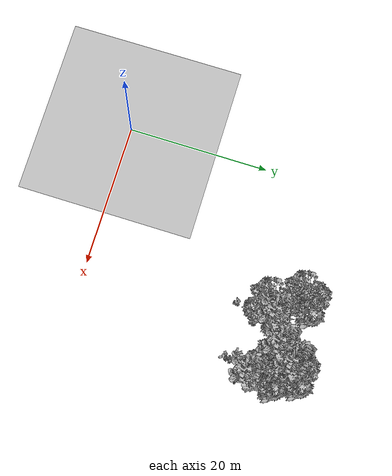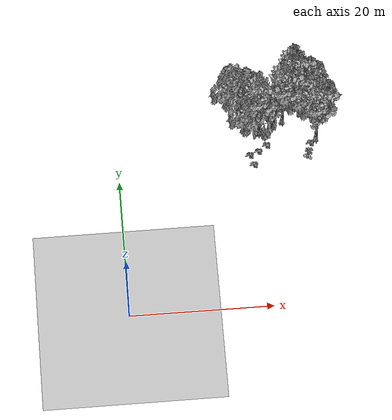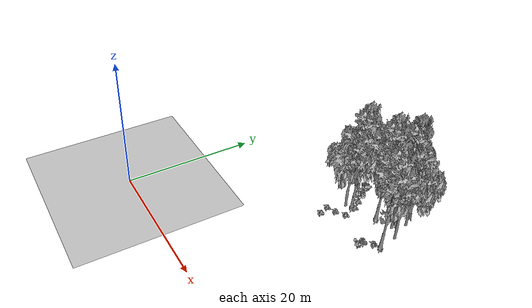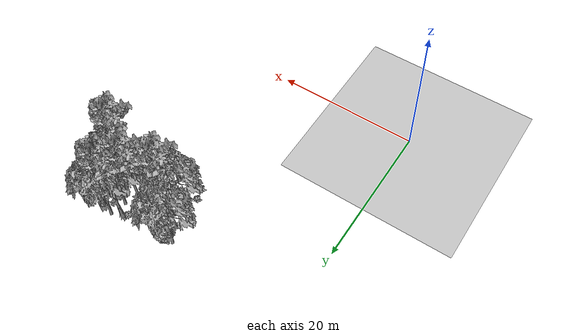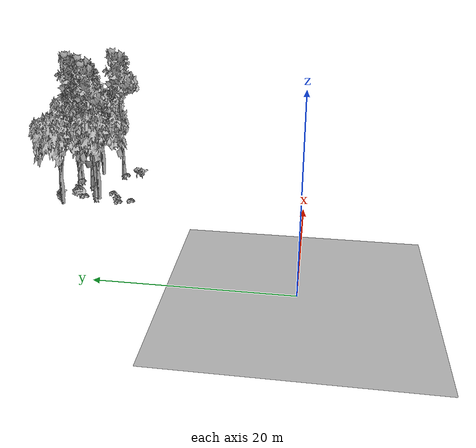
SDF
<sdf version="1.7">
 <world name="default">
  <model name="ground_plane">
   <static>1</static>
   <link name="link">
    <collision name="collision">
     <pose>-50 0 0 0 -0 0</pose>
     <geometry><plane><normal>0 0 1</normal><size>80 80</size></plane></geometry>
     <surface><contact><ode><min_depth>0.01</min_depth><max_vel>0</max_vel></ode></contact></surface>
    </collision>
    <visual name="grass">
     <cast_shadows>0</cast_shadows>
     <geometry>
      <mesh>
       <scale>0.46714285714285714 0.46714285714285714 0.1</scale>
       <uri>file://grass_plane/meshes/grass_plane.dae</uri>
      </mesh>
     </geometry>
    </visual>
   </link>
  </model>
  <model name="Tree 39">
   <static>1</static>
   <pose>25.471126532992812 29.7137734956885 0 1.57079 -0 0</pose>
   <link name="link">
    <collision name="collision">
     <geometry><mesh><scale>3.5 5 3.5</scale><uri>model://tree_9/meshes/tree_9.obj</uri></mesh></geometry>
    </collision>
    <visual name="visual">
     <geometry><mesh><scale>3.5 5 3.5</scale><uri>model://tree_9/meshes/tree_9.obj</uri></mesh></geometry>
    </visual>
   </link>
  </model>
  <model name="Tree 81">
   <static>1</static>
   <pose>20.12323855819615 26.09882681263126 0 1.57079 -0 0</pose>
   <link name="link">
    <collision name="collision">
     <geometry><mesh><scale>3.5 5 3.5</scale><uri>model://tree_9/meshes/tree_9.obj</uri></mesh></geometry>
    </collision>
    <visual name="visual">
     <geometry><mesh><scale>3.5 5 3.5</scale><uri>model://tree_9/meshes/tree_9.obj</uri></mesh></geometry>
    </visual>
   </link>
  </model>
  <model name="Tree 118">
   <static>1</static>
   <pose>28.11888995648276 24.642173588225972 0 1.57079 -0 0</pose>
   <link name="link">
    <collision name="collision">
     <geometry><mesh><scale>3.5 5 3.5</scale><uri>model://tree_9/meshes/tree_9.obj</uri></mesh></geometry>
    </collision>
    <visual name="visual">
     <geometry><mesh><scale>3.5 5 3.5</scale><uri>model://tree_9/meshes/tree_9.obj</uri></mesh></geometry>
    </visual>
   </link>
  </model>
  <model name="Tree 154">
   <static>1</static>
   <pose>27.626919223733495 27.364882382783463 0 1.57079 -0 0</pose>
   <link name="link">
    <collision name="collision">
     <geometry><mesh><scale>3.5 5 3.5</scale><uri>model://tree_2/meshes/tree_2.obj</uri></mesh></geometry>
    </collision>
    <visual name="visual">
     <geometry><mesh><scale>3.5 5 3.5</scale><uri>model://tree_2/meshes/tree_2.obj</uri></mesh></geometry>
    </visual>
   </link>
  </model>
  <model name="Tree 195">
   <static>1</static>
   <pose>17.274785125520282 29.39553859680761 0 1.57079 -0 0</pose>
   <link name="link">
    <collision name="collision">
     <geometry><mesh><scale>3.5 5 3.5</scale><uri>model://tree_2/meshes/tree_2.obj</uri></mesh></geometry>
    </collision>
    <visual name="visual">
     <geometry><mesh><scale>3.5 5 3.5</scale><uri>model://tree_2/meshes/tree_2.obj</uri></mesh></geometry>
    </visual>
   </link>
  </model>
  <model name="Tree 267">
   <static>1</static>
   <pose>25.90585692077137 28.32681982635745 0 1.57079 -0 0</pose>
   <link name="link">
    <collision name="collision">
     <geometry><mesh><scale>3.5 5 3.5</scale><uri>model://tree_2/meshes/tree_2.obj</uri></mesh></geometry>
    </collision>
    <visual name="visual">
     <geometry><mesh><scale>3.5 5 3.5</scale><uri>model://tree_2/meshes/tree_2.obj</uri></mesh></geometry>
    </visual>
   </link>
  </model>
  <model name="Tree 387">
   <static>1</static>
   <pose>25.08452772501895 29.897387730684954 0 1.57079 -0 0</pose>
   <link name="link">
    <collision name="collision">
     <geometry><mesh><scale>3.5 5 3.5</scale><uri>model://tree_9/meshes/tree_9.obj</uri></mesh></geometry>
    </collision>
    <visual name="visual">
     <geometry><mesh><scale>3.5 5 3.5</scale><uri>model://tree_9/meshes/tree_9.obj</uri></mesh></geometry>
    </visual>
   </link>
  </model>
  <model name="Tree 432">
   <static>1</static>
   <pose>23.592212477729348 27.63136191875448 0 1.57079 -0 0</pose>
   <link name="link">
    <collision name="collision">
     <geometry><mesh><scale>3.5 5 3.5</scale><uri>model://tree_9/meshes/tree_9.obj</uri></mesh></geometry>
    </collision>
    <visual name="visual">
     <geometry><mesh><scale>3.5 5 3.5</scale><uri>model://tree_9/meshes/tree_9.obj</uri></mesh></geometry>
    </visual>
   </link>
  </model>
  <model name="Tree 467">
   <static>1</static>
   <pose>26.413514283804005 30.416051594831274 0 1.57079 -0 0</pose>
   <link name="link">
    <collision name="collision">
     <geometry><mesh><scale>3.5 5 3.5</scale><uri>model://tree_2/meshes/tree_2.obj</uri></mesh></geometry>
    </collision>
    <visual name="visual">
     <geometry><mesh><scale>3.5 5 3.5</scale><uri>model://tree_2/meshes/tree_2.obj</uri></mesh></geometry>
    </visual>
   </link>
  </model>
  <model name="Tree 560">
   <static>1</static>
   <pose>19.409519392487418 25.420409722256508 0 1.57079 -0 0</pose>
   <link name="link">
    <collision name="collision">
     <geometry><mesh><scale>3.5 5 3.5</scale><uri>model://tree_2/meshes/tree_2.obj</uri></mesh></geometry>
    </collision>
    <visual name="visual">
     <geometry><mesh><scale>3.5 5 3.5</scale><uri>model://tree_2/meshes/tree_2.obj</uri></mesh></geometry>
    </visual>
   </link>
  </model>
  <model name="Bush 11">
   <static>1</static>
   <pose>19.882777669383252 23.307948127724586 0 1.57079 -0 0</pose>
   <link name="link">
    <collision name="collision">
     <geometry><mesh><scale>2 2 2</scale><uri>model://bush_2/meshes/bush_2.obj</uri></mesh></geometry>
     <surface><contact><collide_without_contact>false</collide_without_contact></contact></surface>
    </collision>
    <visual name="visual">
     <geometry><mesh><scale>2 2 2</scale><uri>model://bush_2/meshes/bush_2.obj</uri></mesh></geometry>
    </visual>
   </link>
  </model>
  <model name="Bush 34">
   <static>1</static>
   <pose>19.74751919747846 27.42206759187698 0 1.57079 -0 0</pose>
   <link name="link">
    <collision name="collision">
     <geometry><mesh><scale>2 2 2</scale><uri>model://bush_2/meshes/bush_2.obj</uri></mesh></geometry>
     <surface><contact><collide_without_contact>false</collide_without_contact></contact></surface>
    </collision>
    <visual name="visual">
     <geometry><mesh><scale>2 2 2</scale><uri>model://bush_2/meshes/bush_2.obj</uri></mesh></geometry>
    </visual>
   </link>
  </model>
  <model name="Bush 94">
   <static>1</static>
   <pose>18.647359312774746 22.802483188548088 0 1.57079 -0 0</pose>
   <link name="link">
    <collision name="collision">
     <geometry><mesh><scale>2 2 2</scale><uri>model://bush_2/meshes/bush_2.obj</uri></mesh></geometry>
     <surface><contact><collide_without_contact>false</collide_without_contact></contact></surface>
    </collision>
    <visual name="visual">
     <geometry><mesh><scale>2 2 2</scale><uri>model://bush_2/meshes/bush_2.obj</uri></mesh></geometry>
    </visual>
   </link>
  </model>
  <model name="Bush 223">
   <static>1</static>
   <pose>26.98359454757484 22.592871435768593 0 1.57079 -0 0</pose>
   <link name="link">
    <collision name="collision">
     <geometry><mesh><scale>2 2 2</scale><uri>model://bush_5/meshes/bush_5.obj</uri></mesh></geometry>
     <surface><contact><collide_without_contact>false</collide_without_contact></contact></surface>
    </collision>
    <visual name="visual">
     <geometry><mesh><scale>2 2 2</scale><uri>model://bush_5/meshes/bush_5.obj</uri></mesh></geometry>
    </visual>
   </link>
  </model>
  <model name="Bush 263">
   <static>1</static>
   <pose>27.32927064101804 24.06493250732369 0 1.57079 -0 0</pose>
   <link name="link">
    <collision name="collision">
     <geometry><mesh><scale>2 2 2</scale><uri>model://bush_2/meshes/bush_2.obj</uri></mesh></geometry>
     <surface><contact><collide_without_contact>false</collide_without_contact></contact></surface>
    </collision>
    <visual name="visual">
     <geometry><mesh><scale>2 2 2</scale><uri>model://bush_2/meshes/bush_2.obj</uri></mesh></geometry>
    </visual>
   </link>
  </model>
  <model name="Bush 347">
   <static>1</static>
   <pose>24.617082707149613 29.42674019545065 0 1.57079 -0 0</pose>
   <link name="link">
    <collision name="collision">
     <geometry><mesh><scale>2 2 2</scale><uri>model://bush_2/meshes/bush_2.obj</uri></mesh></geometry>
     <surface><contact><collide_without_contact>false</collide_without_contact></contact></surface>
    </collision>
    <visual name="visual">
     <geometry><mesh><scale>2 2 2</scale><uri>model://bush_2/meshes/bush_2.obj</uri></mesh></geometry>
    </visual>
   </link>
  </model>
  <model name="Bush 384">
   <static>1</static>
   <pose>21.113131686631007 24.17452065434361 0 1.57079 -0 0</pose>
   <link name="link">
    <collision name="collision">
     <geometry><mesh><scale>2 2 2</scale><uri>model://bush_2/meshes/bush_2.obj</uri></mesh></geometry>
     <surface><contact><collide_without_contact>false</collide_without_contact></contact></surface>
    </collision>
    <visual name="visual">
     <geometry><mesh><scale>2 2 2</scale><uri>model://bush_2/meshes/bush_2.obj</uri></mesh></geometry>
    </visual>
   </link>
  </model>
  <model name="Bush 391">
   <static>1</static>
   <pose>26.851968690970153 21.7824854108704 0 1.57079 -0 0</pose>
   <link name="link">
    <collision name="collision">
     <geometry><mesh><scale>2 2 2</scale><uri>model://bush_0/meshes/bush_0.obj</uri></mesh></geometry>
     <surface><contact><collide_without_contact>false</collide_without_contact></contact></surface>
    </collision>
    <visual name="visual">
     <geometry><mesh><scale>2 2 2</scale><uri>model://bush_0/meshes/bush_0.obj</uri></mesh></geometry>
    </visual>
   </link>
  </model>
  <model name="Bush 433">
   <static>1</static>
   <pose>19.236570293820762 27.86842589872154 0 1.57079 -0 0</pose>
   <link name="link">
    <collision name="collision">
     <geometry><mesh><scale>2 2 2</scale><uri>model://bush_1/meshes/bush_1.obj</uri></mesh></geometry>
     <surface><contact><collide_without_contact>false</collide_without_contact></contact></surface>
    </collision>
    <visual name="visual">
     <geometry><mesh><scale>2 2 2</scale><uri>model://bush_1/meshes/bush_1.obj</uri></mesh></geometry>
    </visual>
   </link>
  </model>
  <model name="Bush 506">
   <static>1</static>
   <pose>20.55855645014188 26.21081153401549 0 1.57079 -0 0</pose>
   <link name="link">
    <collision name="collision">
     <geometry><mesh><scale>2 2 2</scale><uri>model://bush_2/meshes/bush_2.obj</uri></mesh></geometry>
     <surface><contact><collide_without_contact>false</collide_without_contact></contact></surface>
    </collision>
    <visual name="visual">
     <geometry><mesh><scale>2 2 2</scale><uri>model://bush_2/meshes/bush_2.obj</uri></mesh></geometry>
    </visual>
   </link>
  </model>
  <model name="Bush 525">
   <static>1</static>
   <pose>18.476178847720945 30.113327480833647 0 1.57079 -0 0</pose>
   <link name="link">
    <collision name="collision">
     <geometry><mesh><scale>2 2 2</scale><uri>model://bush_0/meshes/bush_0.obj</uri></mesh></geometry>
     <surface><contact><collide_without_contact>false</collide_without_contact></contact></surface>
    </collision>
    <visual name="visual">
     <geometry><mesh><scale>2 2 2</scale><uri>model://bush_0/meshes/bush_0.obj</uri></mesh></geometry>
    </visual>
   </link>
  </model>
  <model name="Bush 590">
   <static>1</static>
   <pose>18.032201969460523 29.85386407444716 0 1.57079 -0 0</pose>
   <link name="link">
    <collision name="collision">
     <geometry><mesh><scale>2 2 2</scale><uri>model://bush_4/meshes/bush_4.obj</uri></mesh></geometry>
     <surface><contact><collide_without_contact>false</collide_without_contact></contact></surface>
    </collision>
    <visual name="visual">
     <geometry><mesh><scale>2 2 2</scale><uri>model://bush_4/meshes/bush_4.obj</uri></mesh></geometry>
    </visual>
   </link>
  </model>
  <model name="Bush 622">
   <static>1</static>
   <pose>19.113574188388732 21.326494929987028 0 1.57079 -0 0</pose>
   <link name="link">
    <collision name="collision">
     <geometry><mesh><scale>2 2 2</scale><uri>model://bush_2/meshes/bush_2.obj</uri></mesh></geometry>
     <surface><contact><collide_without_contact>false</collide_without_contact></contact></surface>
    </collision>
    <visual name="visual">
     <geometry><mesh><scale>2 2 2</scale><uri>model://bush_2/meshes/bush_2.obj</uri></mesh></geometry>
    </visual>
   </link>
  </model>
 </world>
</sdf>
